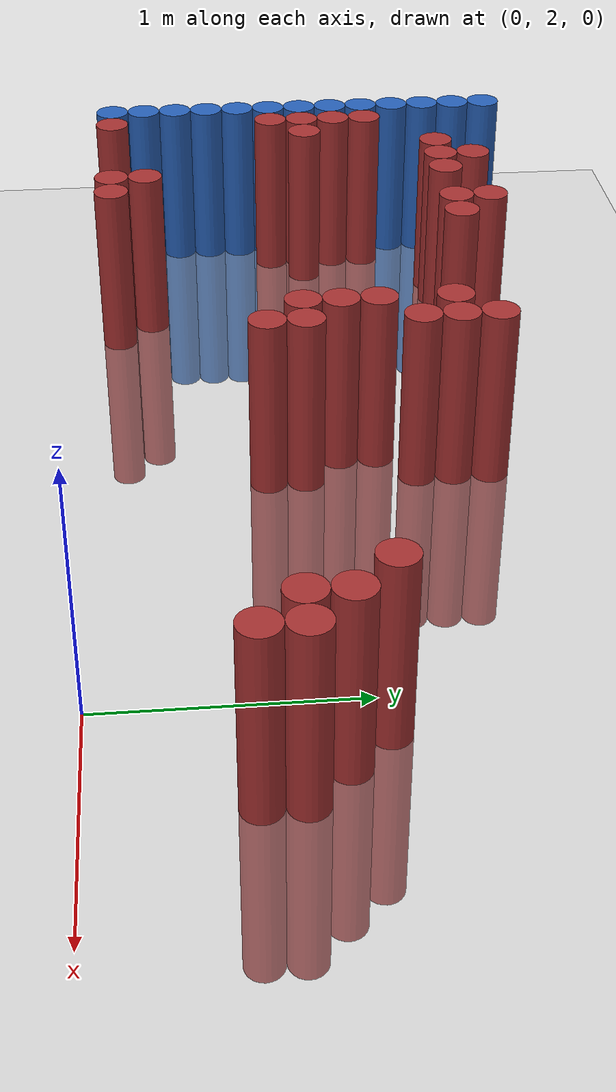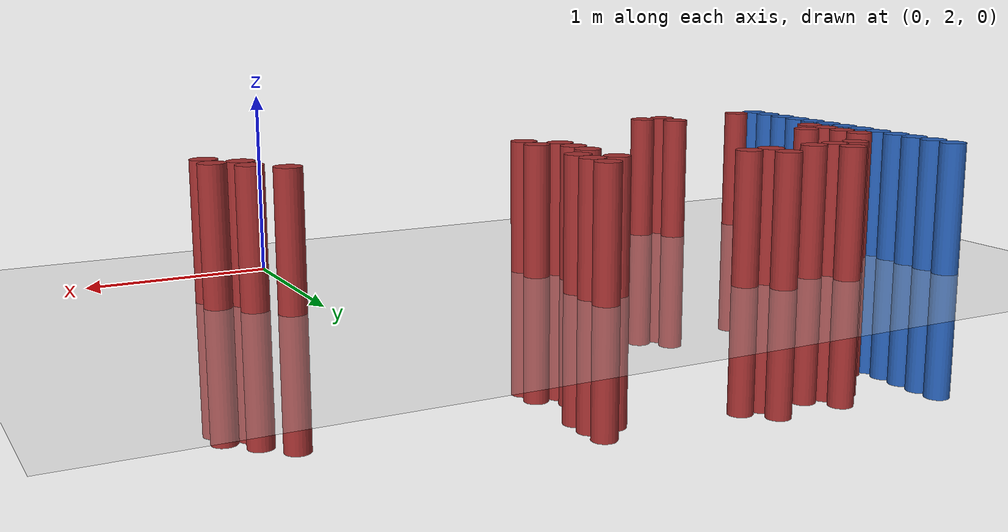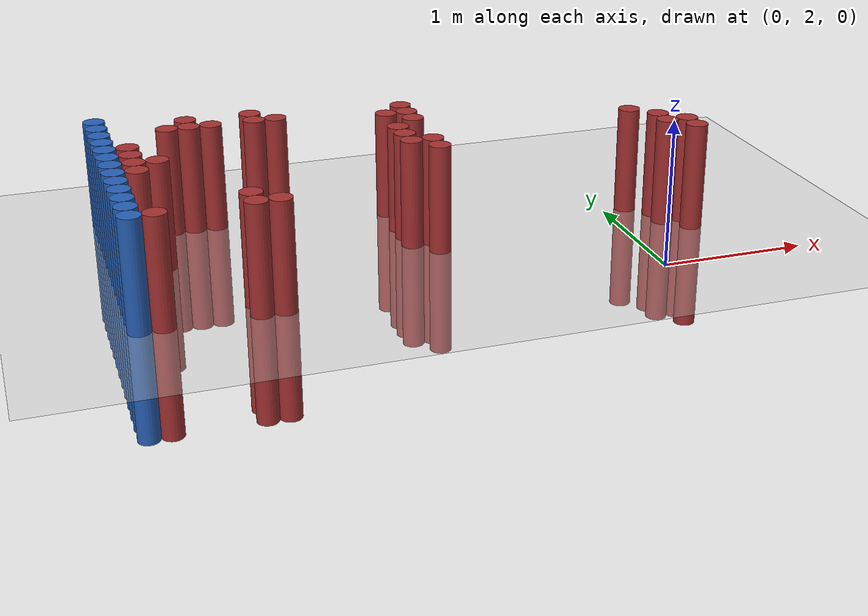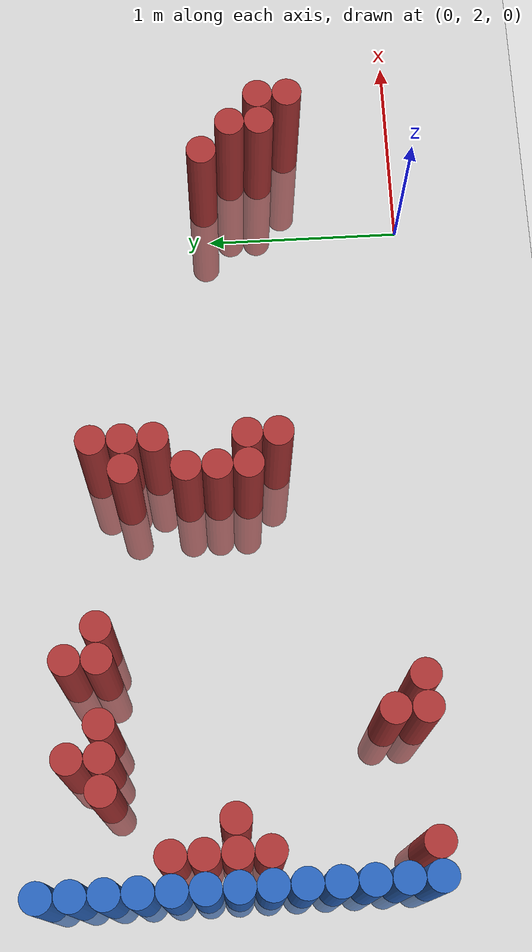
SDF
<sdf version="1.6">
 <world name="default">
  <model name="ground_plane">
   <static>1</static>
   <link name="link">
    <collision name="collision">
     <geometry><plane><normal>0 0 1</normal><size>100 100</size></plane></geometry>
     <surface><friction><ode><mu>100</mu><mu2>50</mu2></ode></friction></surface>
    </collision>
    <visual name="visual">
     <cast_shadows>0</cast_shadows>
     <geometry><plane><normal>0 0 1</normal><size>100 100</size></plane></geometry>
     <material>
      <script><uri>file://media/materials/scripts/gazebo.material</uri><name>Gazebo/Grey</name></script>
     </material>
    </visual>
   </link>
  </model>
  <model name="unit_cylinder_145">
   <static>1</static>
   <pose>-3.425000 2.275000 0.000000 0.000000 0.000000 0.000000</pose>
   <link name="link">
    <inertial>
     <mass>1</mass>
     <inertia><ixx>0.145833</ixx><ixy>0</ixy><ixz>0</ixz><iyy>0.145833</iyy><iyz>0</iyz><izz>0.125</izz></inertia>
    </inertial>
    <collision name="collision">
     <geometry><cylinder><radius>0.075000</radius><length>1.5</length></cylinder></geometry>
    </collision>
    <visual name="visual">
     <geometry><cylinder><radius>0.075000</radius><length>1.5</length></cylinder></geometry>
     <material>
      <ambient>0.152000 0.379000 0.720000 1</ambient>
      <diffuse>0.152000 0.379000 0.720000 1</diffuse>
     </material>
     <material>
      <script><name>Gazebo/Grey</name><uri>file://media/materials/scripts/gazebo.material</uri></script>
     </material>
    </visual>
   </link>
  </model>
  <model name="unit_cylinder_147">
   <static>1</static>
   <pose>-3.425000 2.425000 0.000000 0.000000 0.000000 0.000000</pose>
   <link name="link">
    <inertial>
     <mass>1</mass>
     <inertia><ixx>0.145833</ixx><ixy>0</ixy><ixz>0</ixz><iyy>0.145833</iyy><iyz>0</iyz><izz>0.125</izz></inertia>
    </inertial>
    <collision name="collision">
     <geometry><cylinder><radius>0.075000</radius><length>1.5</length></cylinder></geometry>
    </collision>
    <visual name="visual">
     <geometry><cylinder><radius>0.075000</radius><length>1.5</length></cylinder></geometry>
     <material>
      <ambient>0.152000 0.379000 0.720000 1</ambient>
      <diffuse>0.152000 0.379000 0.720000 1</diffuse>
     </material>
     <material>
      <script><name>Gazebo/Grey</name><uri>file://media/materials/scripts/gazebo.material</uri></script>
     </material>
    </visual>
   </link>
  </model>
  <model name="unit_cylinder_149">
   <static>1</static>
   <pose>-3.425000 2.575000 0.000000 0.000000 0.000000 0.000000</pose>
   <link name="link">
    <inertial>
     <mass>1</mass>
     <inertia><ixx>0.145833</ixx><ixy>0</ixy><ixz>0</ixz><iyy>0.145833</iyy><iyz>0</iyz><izz>0.125</izz></inertia>
    </inertial>
    <collision name="collision">
     <geometry><cylinder><radius>0.075000</radius><length>1.5</length></cylinder></geometry>
    </collision>
    <visual name="visual">
     <geometry><cylinder><radius>0.075000</radius><length>1.5</length></cylinder></geometry>
     <material>
      <ambient>0.152000 0.379000 0.720000 1</ambient>
      <diffuse>0.152000 0.379000 0.720000 1</diffuse>
     </material>
     <material>
      <script><name>Gazebo/Grey</name><uri>file://media/materials/scripts/gazebo.material</uri></script>
     </material>
    </visual>
   </link>
  </model>
  <model name="unit_cylinder_151">
   <static>1</static>
   <pose>-3.425000 2.725000 0.000000 0.000000 0.000000 0.000000</pose>
   <link name="link">
    <inertial>
     <mass>1</mass>
     <inertia><ixx>0.145833</ixx><ixy>0</ixy><ixz>0</ixz><iyy>0.145833</iyy><iyz>0</iyz><izz>0.125</izz></inertia>
    </inertial>
    <collision name="collision">
     <geometry><cylinder><radius>0.075000</radius><length>1.5</length></cylinder></geometry>
    </collision>
    <visual name="visual">
     <geometry><cylinder><radius>0.075000</radius><length>1.5</length></cylinder></geometry>
     <material>
      <ambient>0.152000 0.379000 0.720000 1</ambient>
      <diffuse>0.152000 0.379000 0.720000 1</diffuse>
     </material>
     <material>
      <script><name>Gazebo/Grey</name><uri>file://media/materials/scripts/gazebo.material</uri></script>
     </material>
    </visual>
   </link>
  </model>
  <model name="unit_cylinder_153">
   <static>1</static>
   <pose>-3.425000 2.875000 0.000000 0.000000 0.000000 0.000000</pose>
   <link name="link">
    <inertial>
     <mass>1</mass>
     <inertia><ixx>0.145833</ixx><ixy>0</ixy><ixz>0</ixz><iyy>0.145833</iyy><iyz>0</iyz><izz>0.125</izz></inertia>
    </inertial>
    <collision name="collision">
     <geometry><cylinder><radius>0.075000</radius><length>1.5</length></cylinder></geometry>
    </collision>
    <visual name="visual">
     <geometry><cylinder><radius>0.075000</radius><length>1.5</length></cylinder></geometry>
     <material>
      <ambient>0.152000 0.379000 0.720000 1</ambient>
      <diffuse>0.152000 0.379000 0.720000 1</diffuse>
     </material>
     <material>
      <script><name>Gazebo/Grey</name><uri>file://media/materials/scripts/gazebo.material</uri></script>
     </material>
    </visual>
   </link>
  </model>
  <model name="unit_cylinder_155">
   <static>1</static>
   <pose>-3.425000 3.025000 0.000000 0.000000 0.000000 0.000000</pose>
   <link name="link">
    <inertial>
     <mass>1</mass>
     <inertia><ixx>0.145833</ixx><ixy>0</ixy><ixz>0</ixz><iyy>0.145833</iyy><iyz>0</iyz><izz>0.125</izz></inertia>
    </inertial>
    <collision name="collision">
     <geometry><cylinder><radius>0.075000</radius><length>1.5</length></cylinder></geometry>
    </collision>
    <visual name="visual">
     <geometry><cylinder><radius>0.075000</radius><length>1.5</length></cylinder></geometry>
     <material>
      <ambient>0.152000 0.379000 0.720000 1</ambient>
      <diffuse>0.152000 0.379000 0.720000 1</diffuse>
     </material>
     <material>
      <script><name>Gazebo/Grey</name><uri>file://media/materials/scripts/gazebo.material</uri></script>
     </material>
    </visual>
   </link>
  </model>
  <model name="unit_cylinder_157">
   <static>1</static>
   <pose>-3.425000 3.175000 0.000000 0.000000 0.000000 0.000000</pose>
   <link name="link">
    <inertial>
     <mass>1</mass>
     <inertia><ixx>0.145833</ixx><ixy>0</ixy><ixz>0</ixz><iyy>0.145833</iyy><iyz>0</iyz><izz>0.125</izz></inertia>
    </inertial>
    <collision name="collision">
     <geometry><cylinder><radius>0.075000</radius><length>1.5</length></cylinder></geometry>
    </collision>
    <visual name="visual">
     <geometry><cylinder><radius>0.075000</radius><length>1.5</length></cylinder></geometry>
     <material>
      <ambient>0.152000 0.379000 0.720000 1</ambient>
      <diffuse>0.152000 0.379000 0.720000 1</diffuse>
     </material>
     <material>
      <script><name>Gazebo/Grey</name><uri>file://media/materials/scripts/gazebo.material</uri></script>
     </material>
    </visual>
   </link>
  </model>
  <model name="unit_cylinder_159">
   <static>1</static>
   <pose>-3.425000 3.325000 0.000000 0.000000 0.000000 0.000000</pose>
   <link name="link">
    <inertial>
     <mass>1</mass>
     <inertia><ixx>0.145833</ixx><ixy>0</ixy><ixz>0</ixz><iyy>0.145833</iyy><iyz>0</iyz><izz>0.125</izz></inertia>
    </inertial>
    <collision name="collision">
     <geometry><cylinder><radius>0.075000</radius><length>1.5</length></cylinder></geometry>
    </collision>
    <visual name="visual">
     <geometry><cylinder><radius>0.075000</radius><length>1.5</length></cylinder></geometry>
     <material>
      <ambient>0.152000 0.379000 0.720000 1</ambient>
      <diffuse>0.152000 0.379000 0.720000 1</diffuse>
     </material>
     <material>
      <script><name>Gazebo/Grey</name><uri>file://media/materials/scripts/gazebo.material</uri></script>
     </material>
    </visual>
   </link>
  </model>
  <model name="unit_cylinder_161">
   <static>1</static>
   <pose>-3.425000 3.475000 0.000000 0.000000 0.000000 0.000000</pose>
   <link name="link">
    <inertial>
     <mass>1</mass>
     <inertia><ixx>0.145833</ixx><ixy>0</ixy><ixz>0</ixz><iyy>0.145833</iyy><iyz>0</iyz><izz>0.125</izz></inertia>
    </inertial>
    <collision name="collision">
     <geometry><cylinder><radius>0.075000</radius><length>1.5</length></cylinder></geometry>
    </collision>
    <visual name="visual">
     <geometry><cylinder><radius>0.075000</radius><length>1.5</length></cylinder></geometry>
     <material>
      <ambient>0.152000 0.379000 0.720000 1</ambient>
      <diffuse>0.152000 0.379000 0.720000 1</diffuse>
     </material>
     <material>
      <script><name>Gazebo/Grey</name><uri>file://media/materials/scripts/gazebo.material</uri></script>
     </material>
    </visual>
   </link>
  </model>
  <model name="unit_cylinder_163">
   <static>1</static>
   <pose>-3.425000 3.625000 0.000000 0.000000 0.000000 0.000000</pose>
   <link name="link">
    <inertial>
     <mass>1</mass>
     <inertia><ixx>0.145833</ixx><ixy>0</ixy><ixz>0</ixz><iyy>0.145833</iyy><iyz>0</iyz><izz>0.125</izz></inertia>
    </inertial>
    <collision name="collision">
     <geometry><cylinder><radius>0.075000</radius><length>1.5</length></cylinder></geometry>
    </collision>
    <visual name="visual">
     <geometry><cylinder><radius>0.075000</radius><length>1.5</length></cylinder></geometry>
     <material>
      <ambient>0.152000 0.379000 0.720000 1</ambient>
      <diffuse>0.152000 0.379000 0.720000 1</diffuse>
     </material>
     <material>
      <script><name>Gazebo/Grey</name><uri>file://media/materials/scripts/gazebo.material</uri></script>
     </material>
    </visual>
   </link>
  </model>
  <model name="unit_cylinder_165">
   <static>1</static>
   <pose>-3.425000 3.775000 0.000000 0.000000 0.000000 0.000000</pose>
   <link name="link">
    <inertial>
     <mass>1</mass>
     <inertia><ixx>0.145833</ixx><ixy>0</ixy><ixz>0</ixz><iyy>0.145833</iyy><iyz>0</iyz><izz>0.125</izz></inertia>
    </inertial>
    <collision name="collision">
     <geometry><cylinder><radius>0.075000</radius><length>1.5</length></cylinder></geometry>
    </collision>
    <visual name="visual">
     <geometry><cylinder><radius>0.075000</radius><length>1.5</length></cylinder></geometry>
     <material>
      <ambient>0.152000 0.379000 0.720000 1</ambient>
      <diffuse>0.152000 0.379000 0.720000 1</diffuse>
     </material>
     <material>
      <script><name>Gazebo/Grey</name><uri>file://media/materials/scripts/gazebo.material</uri></script>
     </material>
    </visual>
   </link>
  </model>
  <model name="unit_cylinder_167">
   <static>1</static>
   <pose>-3.425000 3.925000 0.000000 0.000000 0.000000 0.000000</pose>
   <link name="link">
    <inertial>
     <mass>1</mass>
     <inertia><ixx>0.145833</ixx><ixy>0</ixy><ixz>0</ixz><iyy>0.145833</iyy><iyz>0</iyz><izz>0.125</izz></inertia>
    </inertial>
    <collision name="collision">
     <geometry><cylinder><radius>0.075000</radius><length>1.5</length></cylinder></geometry>
    </collision>
    <visual name="visual">
     <geometry><cylinder><radius>0.075000</radius><length>1.5</length></cylinder></geometry>
     <material>
      <ambient>0.152000 0.379000 0.720000 1</ambient>
      <diffuse>0.152000 0.379000 0.720000 1</diffuse>
     </material>
     <material>
      <script><name>Gazebo/Grey</name><uri>file://media/materials/scripts/gazebo.material</uri></script>
     </material>
    </visual>
   </link>
  </model>
  <model name="unit_cylinder_235">
   <static>1</static>
   <pose>-3.425000 2.125000 0.000000 0.000000 0.000000 0.000000</pose>
   <link name="link">
    <inertial>
     <mass>1</mass>
     <inertia><ixx>0.145833</ixx><ixy>0</ixy><ixz>0</ixz><iyy>0.145833</iyy><iyz>0</iyz><izz>0.125</izz></inertia>
    </inertial>
    <collision name="collision">
     <geometry><cylinder><radius>0.075000</radius><length>1.5</length></cylinder></geometry>
    </collision>
    <visual name="visual">
     <geometry><cylinder><radius>0.075000</radius><length>1.5</length></cylinder></geometry>
     <material>
      <ambient>0.152000 0.379000 0.720000 1</ambient>
      <diffuse>0.152000 0.379000 0.720000 1</diffuse>
     </material>
     <material>
      <script><name>Gazebo/Grey</name><uri>file://media/materials/scripts/gazebo.material</uri></script>
     </material>
    </visual>
   </link>
  </model>
  <model name="unit_cylinder_236">
   <static>1</static>
   <pose>-3.425000 2.275000 0.000000 0.000000 0.000000 0.000000</pose>
   <link name="link">
    <inertial>
     <mass>1</mass>
     <inertia><ixx>0.145833</ixx><ixy>0</ixy><ixz>0</ixz><iyy>0.145833</iyy><iyz>0</iyz><izz>0.125</izz></inertia>
    </inertial>
    <collision name="collision">
     <geometry><cylinder><radius>0.075000</radius><length>1.5</length></cylinder></geometry>
    </collision>
    <visual name="visual">
     <geometry><cylinder><radius>0.075000</radius><length>1.5</length></cylinder></geometry>
     <material>
      <ambient>0.152000 0.379000 0.720000 1</ambient>
      <diffuse>0.152000 0.379000 0.720000 1</diffuse>
     </material>
     <material>
      <script><name>Gazebo/Grey</name><uri>file://media/materials/scripts/gazebo.material</uri></script>
     </material>
    </visual>
   </link>
  </model>
  <model name="unit_cylinder_237">
   <static>1</static>
   <pose>-3.425000 2.425000 0.000000 0.000000 0.000000 0.000000</pose>
   <link name="link">
    <inertial>
     <mass>1</mass>
     <inertia><ixx>0.145833</ixx><ixy>0</ixy><ixz>0</ixz><iyy>0.145833</iyy><iyz>0</iyz><izz>0.125</izz></inertia>
    </inertial>
    <collision name="collision">
     <geometry><cylinder><radius>0.075000</radius><length>1.5</length></cylinder></geometry>
    </collision>
    <visual name="visual">
     <geometry><cylinder><radius>0.075000</radius><length>1.5</length></cylinder></geometry>
     <material>
      <ambient>0.152000 0.379000 0.720000 1</ambient>
      <diffuse>0.152000 0.379000 0.720000 1</diffuse>
     </material>
     <material>
      <script><name>Gazebo/Grey</name><uri>file://media/materials/scripts/gazebo.material</uri></script>
     </material>
    </visual>
   </link>
  </model>
  <model name="unit_cylinder_238">
   <static>1</static>
   <pose>-3.425000 2.575000 0.000000 0.000000 0.000000 0.000000</pose>
   <link name="link">
    <inertial>
     <mass>1</mass>
     <inertia><ixx>0.145833</ixx><ixy>0</ixy><ixz>0</ixz><iyy>0.145833</iyy><iyz>0</iyz><izz>0.125</izz></inertia>
    </inertial>
    <collision name="collision">
     <geometry><cylinder><radius>0.075000</radius><length>1.5</length></cylinder></geometry>
    </collision>
    <visual name="visual">
     <geometry><cylinder><radius>0.075000</radius><length>1.5</length></cylinder></geometry>
     <material>
      <ambient>0.152000 0.379000 0.720000 1</ambient>
      <diffuse>0.152000 0.379000 0.720000 1</diffuse>
     </material>
     <material>
      <script><name>Gazebo/Grey</name><uri>file://media/materials/scripts/gazebo.material</uri></script>
     </material>
    </visual>
   </link>
  </model>
  <model name="unit_cylinder_239">
   <static>1</static>
   <pose>-3.425000 2.725000 0.000000 0.000000 0.000000 0.000000</pose>
   <link name="link">
    <inertial>
     <mass>1</mass>
     <inertia><ixx>0.145833</ixx><ixy>0</ixy><ixz>0</ixz><iyy>0.145833</iyy><iyz>0</iyz><izz>0.125</izz></inertia>
    </inertial>
    <collision name="collision">
     <geometry><cylinder><radius>0.075000</radius><length>1.5</length></cylinder></geometry>
    </collision>
    <visual name="visual">
     <geometry><cylinder><radius>0.075000</radius><length>1.5</length></cylinder></geometry>
     <material>
      <ambient>0.152000 0.379000 0.720000 1</ambient>
      <diffuse>0.152000 0.379000 0.720000 1</diffuse>
     </material>
     <material>
      <script><name>Gazebo/Grey</name><uri>file://media/materials/scripts/gazebo.material</uri></script>
     </material>
    </visual>
   </link>
  </model>
  <model name="unit_cylinder_240">
   <static>1</static>
   <pose>-3.425000 2.875000 0.000000 0.000000 0.000000 0.000000</pose>
   <link name="link">
    <inertial>
     <mass>1</mass>
     <inertia><ixx>0.145833</ixx><ixy>0</ixy><ixz>0</ixz><iyy>0.145833</iyy><iyz>0</iyz><izz>0.125</izz></inertia>
    </inertial>
    <collision name="collision">
     <geometry><cylinder><radius>0.075000</radius><length>1.5</length></cylinder></geometry>
    </collision>
    <visual name="visual">
     <geometry><cylinder><radius>0.075000</radius><length>1.5</length></cylinder></geometry>
     <material>
      <ambient>0.152000 0.379000 0.720000 1</ambient>
      <diffuse>0.152000 0.379000 0.720000 1</diffuse>
     </material>
     <material>
      <script><name>Gazebo/Grey</name><uri>file://media/materials/scripts/gazebo.material</uri></script>
     </material>
    </visual>
   </link>
  </model>
  <model name="unit_cylinder_241">
   <static>1</static>
   <pose>-3.425000 3.025000 0.000000 0.000000 0.000000 0.000000</pose>
   <link name="link">
    <inertial>
     <mass>1</mass>
     <inertia><ixx>0.145833</ixx><ixy>0</ixy><ixz>0</ixz><iyy>0.145833</iyy><iyz>0</iyz><izz>0.125</izz></inertia>
    </inertial>
    <collision name="collision">
     <geometry><cylinder><radius>0.075000</radius><length>1.5</length></cylinder></geometry>
    </collision>
    <visual name="visual">
     <geometry><cylinder><radius>0.075000</radius><length>1.5</length></cylinder></geometry>
     <material>
      <ambient>0.152000 0.379000 0.720000 1</ambient>
      <diffuse>0.152000 0.379000 0.720000 1</diffuse>
     </material>
     <material>
      <script><name>Gazebo/Grey</name><uri>file://media/materials/scripts/gazebo.material</uri></script>
     </material>
    </visual>
   </link>
  </model>
  <model name="unit_cylinder_242">
   <static>1</static>
   <pose>-3.425000 3.175000 0.000000 0.000000 0.000000 0.000000</pose>
   <link name="link">
    <inertial>
     <mass>1</mass>
     <inertia><ixx>0.145833</ixx><ixy>0</ixy><ixz>0</ixz><iyy>0.145833</iyy><iyz>0</iyz><izz>0.125</izz></inertia>
    </inertial>
    <collision name="collision">
     <geometry><cylinder><radius>0.075000</radius><length>1.5</length></cylinder></geometry>
    </collision>
    <visual name="visual">
     <geometry><cylinder><radius>0.075000</radius><length>1.5</length></cylinder></geometry>
     <material>
      <ambient>0.152000 0.379000 0.720000 1</ambient>
      <diffuse>0.152000 0.379000 0.720000 1</diffuse>
     </material>
     <material>
      <script><name>Gazebo/Grey</name><uri>file://media/materials/scripts/gazebo.material</uri></script>
     </material>
    </visual>
   </link>
  </model>
  <model name="unit_cylinder_243">
   <static>1</static>
   <pose>-3.425000 3.325000 0.000000 0.000000 0.000000 0.000000</pose>
   <link name="link">
    <inertial>
     <mass>1</mass>
     <inertia><ixx>0.145833</ixx><ixy>0</ixy><ixz>0</ixz><iyy>0.145833</iyy><iyz>0</iyz><izz>0.125</izz></inertia>
    </inertial>
    <collision name="collision">
     <geometry><cylinder><radius>0.075000</radius><length>1.5</length></cylinder></geometry>
    </collision>
    <visual name="visual">
     <geometry><cylinder><radius>0.075000</radius><length>1.5</length></cylinder></geometry>
     <material>
      <ambient>0.152000 0.379000 0.720000 1</ambient>
      <diffuse>0.152000 0.379000 0.720000 1</diffuse>
     </material>
     <material>
      <script><name>Gazebo/Grey</name><uri>file://media/materials/scripts/gazebo.material</uri></script>
     </material>
    </visual>
   </link>
  </model>
  <model name="unit_cylinder_244">
   <static>1</static>
   <pose>-3.425000 3.475000 0.000000 0.000000 0.000000 0.000000</pose>
   <link name="link">
    <inertial>
     <mass>1</mass>
     <inertia><ixx>0.145833</ixx><ixy>0</ixy><ixz>0</ixz><iyy>0.145833</iyy><iyz>0</iyz><izz>0.125</izz></inertia>
    </inertial>
    <collision name="collision">
     <geometry><cylinder><radius>0.075000</radius><length>1.5</length></cylinder></geometry>
    </collision>
    <visual name="visual">
     <geometry><cylinder><radius>0.075000</radius><length>1.5</length></cylinder></geometry>
     <material>
      <ambient>0.152000 0.379000 0.720000 1</ambient>
      <diffuse>0.152000 0.379000 0.720000 1</diffuse>
     </material>
     <material>
      <script><name>Gazebo/Grey</name><uri>file://media/materials/scripts/gazebo.material</uri></script>
     </material>
    </visual>
   </link>
  </model>
  <model name="unit_cylinder_245">
   <static>1</static>
   <pose>-3.425000 3.625000 0.000000 0.000000 0.000000 0.000000</pose>
   <link name="link">
    <inertial>
     <mass>1</mass>
     <inertia><ixx>0.145833</ixx><ixy>0</ixy><ixz>0</ixz><iyy>0.145833</iyy><iyz>0</iyz><izz>0.125</izz></inertia>
    </inertial>
    <collision name="collision">
     <geometry><cylinder><radius>0.075000</radius><length>1.5</length></cylinder></geometry>
    </collision>
    <visual name="visual">
     <geometry><cylinder><radius>0.075000</radius><length>1.5</length></cylinder></geometry>
     <material>
      <ambient>0.152000 0.379000 0.720000 1</ambient>
      <diffuse>0.152000 0.379000 0.720000 1</diffuse>
     </material>
     <material>
      <script><name>Gazebo/Grey</name><uri>file://media/materials/scripts/gazebo.material</uri></script>
     </material>
    </visual>
   </link>
  </model>
  <model name="unit_cylinder_246">
   <static>1</static>
   <pose>-3.425000 3.775000 0.000000 0.000000 0.000000 0.000000</pose>
   <link name="link">
    <inertial>
     <mass>1</mass>
     <inertia><ixx>0.145833</ixx><ixy>0</ixy><ixz>0</ixz><iyy>0.145833</iyy><iyz>0</iyz><izz>0.125</izz></inertia>
    </inertial>
    <collision name="collision">
     <geometry><cylinder><radius>0.075000</radius><length>1.5</length></cylinder></geometry>
    </collision>
    <visual name="visual">
     <geometry><cylinder><radius>0.075000</radius><length>1.5</length></cylinder></geometry>
     <material>
      <ambient>0.152000 0.379000 0.720000 1</ambient>
      <diffuse>0.152000 0.379000 0.720000 1</diffuse>
     </material>
     <material>
      <script><name>Gazebo/Grey</name><uri>file://media/materials/scripts/gazebo.material</uri></script>
     </material>
    </visual>
   </link>
  </model>
  <model name="unit_cylinder_269">
   <static>1</static>
   <pose>-3.275000 2.125000 0.000000 0.000000 0.000000 0.000000</pose>
   <link name="link">
    <inertial>
     <mass>1</mass>
     <inertia><ixx>0.145833</ixx><ixy>0</ixy><ixz>0</ixz><iyy>0.145833</iyy><iyz>0</iyz><izz>0.125</izz></inertia>
    </inertial>
    <collision name="collision">
     <geometry><cylinder><radius>0.075000</radius><length>1.5</length></cylinder></geometry>
    </collision>
    <visual name="visual">
     <geometry><cylinder><radius>0.075000</radius><length>1.5</length></cylinder></geometry>
     <material>
      <ambient>0.648000 0.192000 0.192000 1</ambient>
      <diffuse>0.648000 0.192000 0.192000 1</diffuse>
     </material>
     <material>
      <script><name>Gazebo/Grey</name><uri>file://media/materials/scripts/gazebo.material</uri></script>
     </material>
    </visual>
   </link>
  </model>
  <model name="unit_cylinder_270">
   <static>1</static>
   <pose>-3.275000 2.875000 0.000000 0.000000 0.000000 0.000000</pose>
   <link name="link">
    <inertial>
     <mass>1</mass>
     <inertia><ixx>0.145833</ixx><ixy>0</ixy><ixz>0</ixz><iyy>0.145833</iyy><iyz>0</iyz><izz>0.125</izz></inertia>
    </inertial>
    <collision name="collision">
     <geometry><cylinder><radius>0.075000</radius><length>1.5</length></cylinder></geometry>
    </collision>
    <visual name="visual">
     <geometry><cylinder><radius>0.075000</radius><length>1.5</length></cylinder></geometry>
     <material>
      <ambient>0.648000 0.192000 0.192000 1</ambient>
      <diffuse>0.648000 0.192000 0.192000 1</diffuse>
     </material>
     <material>
      <script><name>Gazebo/Grey</name><uri>file://media/materials/scripts/gazebo.material</uri></script>
     </material>
    </visual>
   </link>
  </model>
  <model name="unit_cylinder_271">
   <static>1</static>
   <pose>-3.275000 3.025000 0.000000 0.000000 0.000000 0.000000</pose>
   <link name="link">
    <inertial>
     <mass>1</mass>
     <inertia><ixx>0.145833</ixx><ixy>0</ixy><ixz>0</ixz><iyy>0.145833</iyy><iyz>0</iyz><izz>0.125</izz></inertia>
    </inertial>
    <collision name="collision">
     <geometry><cylinder><radius>0.075000</radius><length>1.5</length></cylinder></geometry>
    </collision>
    <visual name="visual">
     <geometry><cylinder><radius>0.075000</radius><length>1.5</length></cylinder></geometry>
     <material>
      <ambient>0.648000 0.192000 0.192000 1</ambient>
      <diffuse>0.648000 0.192000 0.192000 1</diffuse>
     </material>
     <material>
      <script><name>Gazebo/Grey</name><uri>file://media/materials/scripts/gazebo.material</uri></script>
     </material>
    </visual>
   </link>
  </model>
  <model name="unit_cylinder_272">
   <static>1</static>
   <pose>-3.275000 3.175000 0.000000 0.000000 0.000000 0.000000</pose>
   <link name="link">
    <inertial>
     <mass>1</mass>
     <inertia><ixx>0.145833</ixx><ixy>0</ixy><ixz>0</ixz><iyy>0.145833</iyy><iyz>0</iyz><izz>0.125</izz></inertia>
    </inertial>
    <collision name="collision">
     <geometry><cylinder><radius>0.075000</radius><length>1.5</length></cylinder></geometry>
    </collision>
    <visual name="visual">
     <geometry><cylinder><radius>0.075000</radius><length>1.5</length></cylinder></geometry>
     <material>
      <ambient>0.648000 0.192000 0.192000 1</ambient>
      <diffuse>0.648000 0.192000 0.192000 1</diffuse>
     </material>
     <material>
      <script><name>Gazebo/Grey</name><uri>file://media/materials/scripts/gazebo.material</uri></script>
     </material>
    </visual>
   </link>
  </model>
  <model name="unit_cylinder_273">
   <static>1</static>
   <pose>-3.275000 3.325000 0.000000 0.000000 0.000000 0.000000</pose>
   <link name="link">
    <inertial>
     <mass>1</mass>
     <inertia><ixx>0.145833</ixx><ixy>0</ixy><ixz>0</ixz><iyy>0.145833</iyy><iyz>0</iyz><izz>0.125</izz></inertia>
    </inertial>
    <collision name="collision">
     <geometry><cylinder><radius>0.075000</radius><length>1.5</length></cylinder></geometry>
    </collision>
    <visual name="visual">
     <geometry><cylinder><radius>0.075000</radius><length>1.5</length></cylinder></geometry>
     <material>
      <ambient>0.648000 0.192000 0.192000 1</ambient>
      <diffuse>0.648000 0.192000 0.192000 1</diffuse>
     </material>
     <material>
      <script><name>Gazebo/Grey</name><uri>file://media/materials/scripts/gazebo.material</uri></script>
     </material>
    </visual>
   </link>
  </model>
  <model name="unit_cylinder_283">
   <static>1</static>
   <pose>-3.125000 3.025000 0.000000 0.000000 0.000000 0.000000</pose>
   <link name="link">
    <inertial>
     <mass>1</mass>
     <inertia><ixx>0.145833</ixx><ixy>0</ixy><ixz>0</ixz><iyy>0.145833</iyy><iyz>0</iyz><izz>0.125</izz></inertia>
    </inertial>
    <collision name="collision">
     <geometry><cylinder><radius>0.075000</radius><length>1.5</length></cylinder></geometry>
    </collision>
    <visual name="visual">
     <geometry><cylinder><radius>0.075000</radius><length>1.5</length></cylinder></geometry>
     <material>
      <ambient>0.648000 0.192000 0.192000 1</ambient>
      <diffuse>0.648000 0.192000 0.192000 1</diffuse>
     </material>
     <material>
      <script><name>Gazebo/Grey</name><uri>file://media/materials/scripts/gazebo.material</uri></script>
     </material>
    </visual>
   </link>
  </model>
  <model name="unit_cylinder_287">
   <static>1</static>
   <pose>-2.975000 3.625000 0.000000 0.000000 0.000000 0.000000</pose>
   <link name="link">
    <inertial>
     <mass>1</mass>
     <inertia><ixx>0.145833</ixx><ixy>0</ixy><ixz>0</ixz><iyy>0.145833</iyy><iyz>0</iyz><izz>0.125</izz></inertia>
    </inertial>
    <collision name="collision">
     <geometry><cylinder><radius>0.075000</radius><length>1.5</length></cylinder></geometry>
    </collision>
    <visual name="visual">
     <geometry><cylinder><radius>0.075000</radius><length>1.5</length></cylinder></geometry>
     <material>
      <ambient>0.648000 0.192000 0.192000 1</ambient>
      <diffuse>0.648000 0.192000 0.192000 1</diffuse>
     </material>
     <material>
      <script><name>Gazebo/Grey</name><uri>file://media/materials/scripts/gazebo.material</uri></script>
     </material>
    </visual>
   </link>
  </model>
  <model name="unit_cylinder_292">
   <static>1</static>
   <pose>-2.825000 3.625000 0.000000 0.000000 0.000000 0.000000</pose>
   <link name="link">
    <inertial>
     <mass>1</mass>
     <inertia><ixx>0.145833</ixx><ixy>0</ixy><ixz>0</ixz><iyy>0.145833</iyy><iyz>0</iyz><izz>0.125</izz></inertia>
    </inertial>
    <collision name="collision">
     <geometry><cylinder><radius>0.075000</radius><length>1.5</length></cylinder></geometry>
    </collision>
    <visual name="visual">
     <geometry><cylinder><radius>0.075000</radius><length>1.5</length></cylinder></geometry>
     <material>
      <ambient>0.648000 0.192000 0.192000 1</ambient>
      <diffuse>0.648000 0.192000 0.192000 1</diffuse>
     </material>
     <material>
      <script><name>Gazebo/Grey</name><uri>file://media/materials/scripts/gazebo.material</uri></script>
     </material>
    </visual>
   </link>
  </model>
  <model name="unit_cylinder_293">
   <static>1</static>
   <pose>-2.825000 3.775000 0.000000 0.000000 0.000000 0.000000</pose>
   <link name="link">
    <inertial>
     <mass>1</mass>
     <inertia><ixx>0.145833</ixx><ixy>0</ixy><ixz>0</ixz><iyy>0.145833</iyy><iyz>0</iyz><izz>0.125</izz></inertia>
    </inertial>
    <collision name="collision">
     <geometry><cylinder><radius>0.075000</radius><length>1.5</length></cylinder></geometry>
    </collision>
    <visual name="visual">
     <geometry><cylinder><radius>0.075000</radius><length>1.5</length></cylinder></geometry>
     <material>
      <ambient>0.648000 0.192000 0.192000 1</ambient>
      <diffuse>0.648000 0.192000 0.192000 1</diffuse>
     </material>
     <material>
      <script><name>Gazebo/Grey</name><uri>file://media/materials/scripts/gazebo.material</uri></script>
     </material>
    </visual>
   </link>
  </model>
  <model name="unit_cylinder_299">
   <static>1</static>
   <pose>-2.675000 2.125000 0.000000 0.000000 0.000000 0.000000</pose>
   <link name="link">
    <inertial>
     <mass>1</mass>
     <inertia><ixx>0.145833</ixx><ixy>0</ixy><ixz>0</ixz><iyy>0.145833</iyy><iyz>0</iyz><izz>0.125</izz></inertia>
    </inertial>
    <collision name="collision">
     <geometry><cylinder><radius>0.075000</radius><length>1.5</length></cylinder></geometry>
    </collision>
    <visual name="visual">
     <geometry><cylinder><radius>0.075000</radius><length>1.5</length></cylinder></geometry>
     <material>
      <ambient>0.648000 0.192000 0.192000 1</ambient>
      <diffuse>0.648000 0.192000 0.192000 1</diffuse>
     </material>
     <material>
      <script><name>Gazebo/Grey</name><uri>file://media/materials/scripts/gazebo.material</uri></script>
     </material>
    </visual>
   </link>
  </model>
  <model name="unit_cylinder_300">
   <static>1</static>
   <pose>-2.675000 2.275000 0.000000 0.000000 0.000000 0.000000</pose>
   <link name="link">
    <inertial>
     <mass>1</mass>
     <inertia><ixx>0.145833</ixx><ixy>0</ixy><ixz>0</ixz><iyy>0.145833</iyy><iyz>0</iyz><izz>0.125</izz></inertia>
    </inertial>
    <collision name="collision">
     <geometry><cylinder><radius>0.075000</radius><length>1.5</length></cylinder></geometry>
    </collision>
    <visual name="visual">
     <geometry><cylinder><radius>0.075000</radius><length>1.5</length></cylinder></geometry>
     <material>
      <ambient>0.648000 0.192000 0.192000 1</ambient>
      <diffuse>0.648000 0.192000 0.192000 1</diffuse>
     </material>
     <material>
      <script><name>Gazebo/Grey</name><uri>file://media/materials/scripts/gazebo.material</uri></script>
     </material>
    </visual>
   </link>
  </model>
  <model name="unit_cylinder_301">
   <static>1</static>
   <pose>-2.675000 3.625000 0.000000 0.000000 0.000000 0.000000</pose>
   <link name="link">
    <inertial>
     <mass>1</mass>
     <inertia><ixx>0.145833</ixx><ixy>0</ixy><ixz>0</ixz><iyy>0.145833</iyy><iyz>0</iyz><izz>0.125</izz></inertia>
    </inertial>
    <collision name="collision">
     <geometry><cylinder><radius>0.075000</radius><length>1.5</length></cylinder></geometry>
    </collision>
    <visual name="visual">
     <geometry><cylinder><radius>0.075000</radius><length>1.5</length></cylinder></geometry>
     <material>
      <ambient>0.648000 0.192000 0.192000 1</ambient>
      <diffuse>0.648000 0.192000 0.192000 1</diffuse>
     </material>
     <material>
      <script><name>Gazebo/Grey</name><uri>file://media/materials/scripts/gazebo.material</uri></script>
     </material>
    </visual>
   </link>
  </model>
  <model name="unit_cylinder_313">
   <static>1</static>
   <pose>-2.525000 2.125000 0.000000 0.000000 0.000000 0.000000</pose>
   <link name="link">
    <inertial>
     <mass>1</mass>
     <inertia><ixx>0.145833</ixx><ixy>0</ixy><ixz>0</ixz><iyy>0.145833</iyy><iyz>0</iyz><izz>0.125</izz></inertia>
    </inertial>
    <collision name="collision">
     <geometry><cylinder><radius>0.075000</radius><length>1.5</length></cylinder></geometry>
    </collision>
    <visual name="visual">
     <geometry><cylinder><radius>0.075000</radius><length>1.5</length></cylinder></geometry>
     <material>
      <ambient>0.648000 0.192000 0.192000 1</ambient>
      <diffuse>0.648000 0.192000 0.192000 1</diffuse>
     </material>
     <material>
      <script><name>Gazebo/Grey</name><uri>file://media/materials/scripts/gazebo.material</uri></script>
     </material>
    </visual>
   </link>
  </model>
  <model name="unit_cylinder_324">
   <static>1</static>
   <pose>-2.375000 3.625000 0.000000 0.000000 0.000000 0.000000</pose>
   <link name="link">
    <inertial>
     <mass>1</mass>
     <inertia><ixx>0.145833</ixx><ixy>0</ixy><ixz>0</ixz><iyy>0.145833</iyy><iyz>0</iyz><izz>0.125</izz></inertia>
    </inertial>
    <collision name="collision">
     <geometry><cylinder><radius>0.075000</radius><length>1.5</length></cylinder></geometry>
    </collision>
    <visual name="visual">
     <geometry><cylinder><radius>0.075000</radius><length>1.5</length></cylinder></geometry>
     <material>
      <ambient>0.648000 0.192000 0.192000 1</ambient>
      <diffuse>0.648000 0.192000 0.192000 1</diffuse>
     </material>
     <material>
      <script><name>Gazebo/Grey</name><uri>file://media/materials/scripts/gazebo.material</uri></script>
     </material>
    </visual>
   </link>
  </model>
  <model name="unit_cylinder_325">
   <static>1</static>
   <pose>-2.375000 3.775000 0.000000 0.000000 0.000000 0.000000</pose>
   <link name="link">
    <inertial>
     <mass>1</mass>
     <inertia><ixx>0.145833</ixx><ixy>0</ixy><ixz>0</ixz><iyy>0.145833</iyy><iyz>0</iyz><izz>0.125</izz></inertia>
    </inertial>
    <collision name="collision">
     <geometry><cylinder><radius>0.075000</radius><length>1.5</length></cylinder></geometry>
    </collision>
    <visual name="visual">
     <geometry><cylinder><radius>0.075000</radius><length>1.5</length></cylinder></geometry>
     <material>
      <ambient>0.648000 0.192000 0.192000 1</ambient>
      <diffuse>0.648000 0.192000 0.192000 1</diffuse>
     </material>
     <material>
      <script><name>Gazebo/Grey</name><uri>file://media/materials/scripts/gazebo.material</uri></script>
     </material>
    </visual>
   </link>
  </model>
  <model name="unit_cylinder_332">
   <static>1</static>
   <pose>-2.225000 3.625000 0.000000 0.000000 0.000000 0.000000</pose>
   <link name="link">
    <inertial>
     <mass>1</mass>
     <inertia><ixx>0.145833</ixx><ixy>0</ixy><ixz>0</ixz><iyy>0.145833</iyy><iyz>0</iyz><izz>0.125</izz></inertia>
    </inertial>
    <collision name="collision">
     <geometry><cylinder><radius>0.075000</radius><length>1.5</length></cylinder></geometry>
    </collision>
    <visual name="visual">
     <geometry><cylinder><radius>0.075000</radius><length>1.5</length></cylinder></geometry>
     <material>
      <ambient>0.648000 0.192000 0.192000 1</ambient>
      <diffuse>0.648000 0.192000 0.192000 1</diffuse>
     </material>
     <material>
      <script><name>Gazebo/Grey</name><uri>file://media/materials/scripts/gazebo.material</uri></script>
     </material>
    </visual>
   </link>
  </model>
  <model name="unit_cylinder_352">
   <static>1</static>
   <pose>-1.475000 2.875000 0.000000 0.000000 0.000000 0.000000</pose>
   <link name="link">
    <inertial>
     <mass>1</mass>
     <inertia><ixx>0.145833</ixx><ixy>0</ixy><ixz>0</ixz><iyy>0.145833</iyy><iyz>0</iyz><izz>0.125</izz></inertia>
    </inertial>
    <collision name="collision">
     <geometry><cylinder><radius>0.075000</radius><length>1.5</length></cylinder></geometry>
    </collision>
    <visual name="visual">
     <geometry><cylinder><radius>0.075000</radius><length>1.5</length></cylinder></geometry>
     <material>
      <ambient>0.648000 0.192000 0.192000 1</ambient>
      <diffuse>0.648000 0.192000 0.192000 1</diffuse>
     </material>
     <material>
      <script><name>Gazebo/Grey</name><uri>file://media/materials/scripts/gazebo.material</uri></script>
     </material>
    </visual>
   </link>
  </model>
  <model name="unit_cylinder_353">
   <static>1</static>
   <pose>-1.475000 3.025000 0.000000 0.000000 0.000000 0.000000</pose>
   <link name="link">
    <inertial>
     <mass>1</mass>
     <inertia><ixx>0.145833</ixx><ixy>0</ixy><ixz>0</ixz><iyy>0.145833</iyy><iyz>0</iyz><izz>0.125</izz></inertia>
    </inertial>
    <collision name="collision">
     <geometry><cylinder><radius>0.075000</radius><length>1.5</length></cylinder></geometry>
    </collision>
    <visual name="visual">
     <geometry><cylinder><radius>0.075000</radius><length>1.5</length></cylinder></geometry>
     <material>
      <ambient>0.648000 0.192000 0.192000 1</ambient>
      <diffuse>0.648000 0.192000 0.192000 1</diffuse>
     </material>
     <material>
      <script><name>Gazebo/Grey</name><uri>file://media/materials/scripts/gazebo.material</uri></script>
     </material>
    </visual>
   </link>
  </model>
  <model name="unit_cylinder_354">
   <static>1</static>
   <pose>-1.475000 3.175000 0.000000 0.000000 0.000000 0.000000</pose>
   <link name="link">
    <inertial>
     <mass>1</mass>
     <inertia><ixx>0.145833</ixx><ixy>0</ixy><ixz>0</ixz><iyy>0.145833</iyy><iyz>0</iyz><izz>0.125</izz></inertia>
    </inertial>
    <collision name="collision">
     <geometry><cylinder><radius>0.075000</radius><length>1.5</length></cylinder></geometry>
    </collision>
    <visual name="visual">
     <geometry><cylinder><radius>0.075000</radius><length>1.5</length></cylinder></geometry>
     <material>
      <ambient>0.648000 0.192000 0.192000 1</ambient>
      <diffuse>0.648000 0.192000 0.192000 1</diffuse>
     </material>
     <material>
      <script><name>Gazebo/Grey</name><uri>file://media/materials/scripts/gazebo.material</uri></script>
     </material>
    </visual>
   </link>
  </model>
  <model name="unit_cylinder_355">
   <static>1</static>
   <pose>-1.475000 3.475000 0.000000 0.000000 0.000000 0.000000</pose>
   <link name="link">
    <inertial>
     <mass>1</mass>
     <inertia><ixx>0.145833</ixx><ixy>0</ixy><ixz>0</ixz><iyy>0.145833</iyy><iyz>0</iyz><izz>0.125</izz></inertia>
    </inertial>
    <collision name="collision">
     <geometry><cylinder><radius>0.075000</radius><length>1.5</length></cylinder></geometry>
    </collision>
    <visual name="visual">
     <geometry><cylinder><radius>0.075000</radius><length>1.5</length></cylinder></geometry>
     <material>
      <ambient>0.648000 0.192000 0.192000 1</ambient>
      <diffuse>0.648000 0.192000 0.192000 1</diffuse>
     </material>
     <material>
      <script><name>Gazebo/Grey</name><uri>file://media/materials/scripts/gazebo.material</uri></script>
     </material>
    </visual>
   </link>
  </model>
  <model name="unit_cylinder_356">
   <static>1</static>
   <pose>-1.325000 2.725000 0.000000 0.000000 0.000000 0.000000</pose>
   <link name="link">
    <inertial>
     <mass>1</mass>
     <inertia><ixx>0.145833</ixx><ixy>0</ixy><ixz>0</ixz><iyy>0.145833</iyy><iyz>0</iyz><izz>0.125</izz></inertia>
    </inertial>
    <collision name="collision">
     <geometry><cylinder><radius>0.075000</radius><length>1.5</length></cylinder></geometry>
    </collision>
    <visual name="visual">
     <geometry><cylinder><radius>0.075000</radius><length>1.5</length></cylinder></geometry>
     <material>
      <ambient>0.648000 0.192000 0.192000 1</ambient>
      <diffuse>0.648000 0.192000 0.192000 1</diffuse>
     </material>
     <material>
      <script><name>Gazebo/Grey</name><uri>file://media/materials/scripts/gazebo.material</uri></script>
     </material>
    </visual>
   </link>
  </model>
  <model name="unit_cylinder_357">
   <static>1</static>
   <pose>-1.325000 2.875000 0.000000 0.000000 0.000000 0.000000</pose>
   <link name="link">
    <inertial>
     <mass>1</mass>
     <inertia><ixx>0.145833</ixx><ixy>0</ixy><ixz>0</ixz><iyy>0.145833</iyy><iyz>0</iyz><izz>0.125</izz></inertia>
    </inertial>
    <collision name="collision">
     <geometry><cylinder><radius>0.075000</radius><length>1.5</length></cylinder></geometry>
    </collision>
    <visual name="visual">
     <geometry><cylinder><radius>0.075000</radius><length>1.5</length></cylinder></geometry>
     <material>
      <ambient>0.648000 0.192000 0.192000 1</ambient>
      <diffuse>0.648000 0.192000 0.192000 1</diffuse>
     </material>
     <material>
      <script><name>Gazebo/Grey</name><uri>file://media/materials/scripts/gazebo.material</uri></script>
     </material>
    </visual>
   </link>
  </model>
  <model name="unit_cylinder_358">
   <static>1</static>
   <pose>-1.325000 3.325000 0.000000 0.000000 0.000000 0.000000</pose>
   <link name="link">
    <inertial>
     <mass>1</mass>
     <inertia><ixx>0.145833</ixx><ixy>0</ixy><ixz>0</ixz><iyy>0.145833</iyy><iyz>0</iyz><izz>0.125</izz></inertia>
    </inertial>
    <collision name="collision">
     <geometry><cylinder><radius>0.075000</radius><length>1.5</length></cylinder></geometry>
    </collision>
    <visual name="visual">
     <geometry><cylinder><radius>0.075000</radius><length>1.5</length></cylinder></geometry>
     <material>
      <ambient>0.648000 0.192000 0.192000 1</ambient>
      <diffuse>0.648000 0.192000 0.192000 1</diffuse>
     </material>
     <material>
      <script><name>Gazebo/Grey</name><uri>file://media/materials/scripts/gazebo.material</uri></script>
     </material>
    </visual>
   </link>
  </model>
  <model name="unit_cylinder_359">
   <static>1</static>
   <pose>-1.325000 3.475000 0.000000 0.000000 0.000000 0.000000</pose>
   <link name="link">
    <inertial>
     <mass>1</mass>
     <inertia><ixx>0.145833</ixx><ixy>0</ixy><ixz>0</ixz><iyy>0.145833</iyy><iyz>0</iyz><izz>0.125</izz></inertia>
    </inertial>
    <collision name="collision">
     <geometry><cylinder><radius>0.075000</radius><length>1.5</length></cylinder></geometry>
    </collision>
    <visual name="visual">
     <geometry><cylinder><radius>0.075000</radius><length>1.5</length></cylinder></geometry>
     <material>
      <ambient>0.648000 0.192000 0.192000 1</ambient>
      <diffuse>0.648000 0.192000 0.192000 1</diffuse>
     </material>
     <material>
      <script><name>Gazebo/Grey</name><uri>file://media/materials/scripts/gazebo.material</uri></script>
     </material>
    </visual>
   </link>
  </model>
  <model name="unit_cylinder_360">
   <static>1</static>
   <pose>-1.325000 3.625000 0.000000 0.000000 0.000000 0.000000</pose>
   <link name="link">
    <inertial>
     <mass>1</mass>
     <inertia><ixx>0.145833</ixx><ixy>0</ixy><ixz>0</ixz><iyy>0.145833</iyy><iyz>0</iyz><izz>0.125</izz></inertia>
    </inertial>
    <collision name="collision">
     <geometry><cylinder><radius>0.075000</radius><length>1.5</length></cylinder></geometry>
    </collision>
    <visual name="visual">
     <geometry><cylinder><radius>0.075000</radius><length>1.5</length></cylinder></geometry>
     <material>
      <ambient>0.648000 0.192000 0.192000 1</ambient>
      <diffuse>0.648000 0.192000 0.192000 1</diffuse>
     </material>
     <material>
      <script><name>Gazebo/Grey</name><uri>file://media/materials/scripts/gazebo.material</uri></script>
     </material>
    </visual>
   </link>
  </model>
  <model name="unit_cylinder_379">
   <static>1</static>
   <pose>0.175000 3.025000 0.000000 0.000000 0.000000 0.000000</pose>
   <link name="link">
    <inertial>
     <mass>1</mass>
     <inertia><ixx>0.145833</ixx><ixy>0</ixy><ixz>0</ixz><iyy>0.145833</iyy><iyz>0</iyz><izz>0.125</izz></inertia>
    </inertial>
    <collision name="collision">
     <geometry><cylinder><radius>0.075000</radius><length>1.5</length></cylinder></geometry>
    </collision>
    <visual name="visual">
     <geometry><cylinder><radius>0.075000</radius><length>1.5</length></cylinder></geometry>
     <material>
      <ambient>0.648000 0.192000 0.192000 1</ambient>
      <diffuse>0.648000 0.192000 0.192000 1</diffuse>
     </material>
     <material>
      <script><name>Gazebo/Grey</name><uri>file://media/materials/scripts/gazebo.material</uri></script>
     </material>
    </visual>
   </link>
  </model>
  <model name="unit_cylinder_388">
   <static>1</static>
   <pose>0.325000 2.725000 0.000000 0.000000 0.000000 0.000000</pose>
   <link name="link">
    <inertial>
     <mass>1</mass>
     <inertia><ixx>0.145833</ixx><ixy>0</ixy><ixz>0</ixz><iyy>0.145833</iyy><iyz>0</iyz><izz>0.125</izz></inertia>
    </inertial>
    <collision name="collision">
     <geometry><cylinder><radius>0.075000</radius><length>1.5</length></cylinder></geometry>
    </collision>
    <visual name="visual">
     <geometry><cylinder><radius>0.075000</radius><length>1.5</length></cylinder></geometry>
     <material>
      <ambient>0.648000 0.192000 0.192000 1</ambient>
      <diffuse>0.648000 0.192000 0.192000 1</diffuse>
     </material>
     <material>
      <script><name>Gazebo/Grey</name><uri>file://media/materials/scripts/gazebo.material</uri></script>
     </material>
    </visual>
   </link>
  </model>
  <model name="unit_cylinder_389">
   <static>1</static>
   <pose>0.325000 2.875000 0.000000 0.000000 0.000000 0.000000</pose>
   <link name="link">
    <inertial>
     <mass>1</mass>
     <inertia><ixx>0.145833</ixx><ixy>0</ixy><ixz>0</ixz><iyy>0.145833</iyy><iyz>0</iyz><izz>0.125</izz></inertia>
    </inertial>
    <collision name="collision">
     <geometry><cylinder><radius>0.075000</radius><length>1.5</length></cylinder></geometry>
    </collision>
    <visual name="visual">
     <geometry><cylinder><radius>0.075000</radius><length>1.5</length></cylinder></geometry>
     <material>
      <ambient>0.648000 0.192000 0.192000 1</ambient>
      <diffuse>0.648000 0.192000 0.192000 1</diffuse>
     </material>
     <material>
      <script><name>Gazebo/Grey</name><uri>file://media/materials/scripts/gazebo.material</uri></script>
     </material>
    </visual>
   </link>
  </model>
  <model name="unit_cylinder_392">
   <static>1</static>
   <pose>0.475000 2.575000 0.000000 0.000000 0.000000 0.000000</pose>
   <link name="link">
    <inertial>
     <mass>1</mass>
     <inertia><ixx>0.145833</ixx><ixy>0</ixy><ixz>0</ixz><iyy>0.145833</iyy><iyz>0</iyz><izz>0.125</izz></inertia>
    </inertial>
    <collision name="collision">
     <geometry><cylinder><radius>0.075000</radius><length>1.5</length></cylinder></geometry>
    </collision>
    <visual name="visual">
     <geometry><cylinder><radius>0.075000</radius><length>1.5</length></cylinder></geometry>
     <material>
      <ambient>0.648000 0.192000 0.192000 1</ambient>
      <diffuse>0.648000 0.192000 0.192000 1</diffuse>
     </material>
     <material>
      <script><name>Gazebo/Grey</name><uri>file://media/materials/scripts/gazebo.material</uri></script>
     </material>
    </visual>
   </link>
  </model>
  <model name="unit_cylinder_393">
   <static>1</static>
   <pose>0.475000 2.725000 0.000000 0.000000 0.000000 0.000000</pose>
   <link name="link">
    <inertial>
     <mass>1</mass>
     <inertia><ixx>0.145833</ixx><ixy>0</ixy><ixz>0</ixz><iyy>0.145833</iyy><iyz>0</iyz><izz>0.125</izz></inertia>
    </inertial>
    <collision name="collision">
     <geometry><cylinder><radius>0.075000</radius><length>1.5</length></cylinder></geometry>
    </collision>
    <visual name="visual">
     <geometry><cylinder><radius>0.075000</radius><length>1.5</length></cylinder></geometry>
     <material>
      <ambient>0.648000 0.192000 0.192000 1</ambient>
      <diffuse>0.648000 0.192000 0.192000 1</diffuse>
     </material>
     <material>
      <script><name>Gazebo/Grey</name><uri>file://media/materials/scripts/gazebo.material</uri></script>
     </material>
    </visual>
   </link>
  </model>
 </world>
</sdf>
